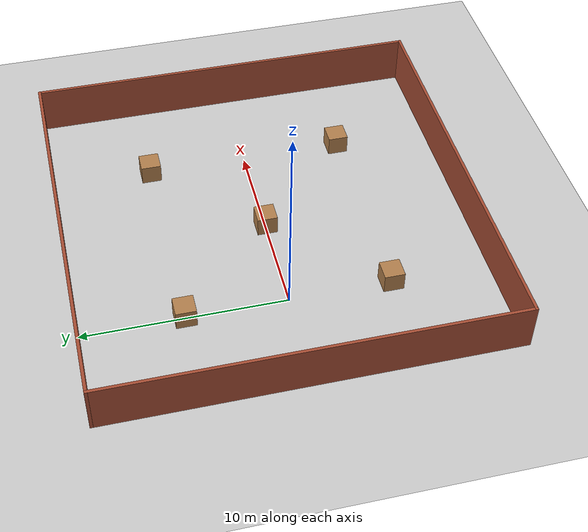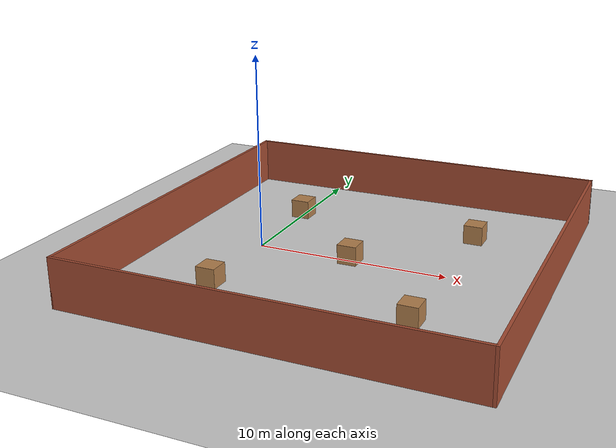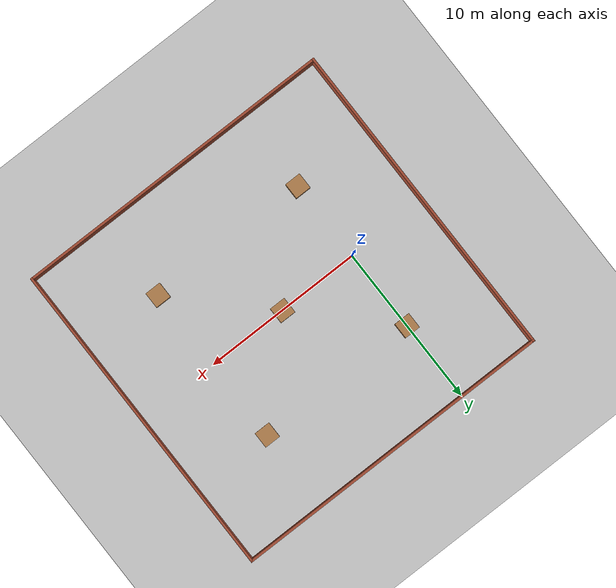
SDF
<?xml version="1.0"?>
<sdf version="1.6">
	<world name="office_world">
		<physics name="1ms" type="ignored">
			<max_step_size>0.001</max_step_size>
			<real_time_factor>1.0</real_time_factor>
		</physics>
		<plugin filename="ignition-gazebo-physics-system" name="gz::sim::systems::Physics"></plugin>
		<plugin filename="ignition-gazebo-user-commands-system" name="gz::sim::systems::UserCommands"></plugin>
		<plugin filename="ignition-gazebo-scene-broadcaster-system" name="gz::sim::systems::SceneBroadcaster"></plugin>
        <plugin filename="ignition-gazebo-contact-system" name="gz::sim::systems::Contact"></plugin>

		<model name="ground_plane">
			<static>true</static>
			<link name="link">
				<collision name="collision">
					<geometry>
						<plane>
						<normal>0 0 1</normal>
						<size>100 100</size>
						</plane>
					</geometry>
				</collision>
				<visual name="visual">
				<geometry>
					<plane>
						<normal>0 0 1</normal>
						<size>100 100</size>
					</plane>
				</geometry>
				<material>
					<ambient>0.8 0.8 0.8 1</ambient>
					<diffuse>0.8 0.8 0.8 1</diffuse>
					<specular>0.8 0.8 0.8 1</specular>
				</material>
				</visual>
			</link>
		</model>

		<light type="directional" name="sun">
			<cast_shadows>false</cast_shadows>
			<pose>0 0 10 0 0 0</pose>
			<diffuse>0.8 0.8 0.8 1</diffuse>
			<specular>0.2 0.2 0.2 1</specular>
			<attenuation>
				<range>1000</range>
				<constant>0.9</constant>
				<linear>0.01</linear>
				<quadratic>0.001</quadratic>
			</attenuation>
			<direction>-0.5 0.1 -0.9</direction>
		</light>

		<include>
			<uri>/Training_House</uri>
		</include>

		<include>
			<uri>/cube</uri>
		</include>

		<include>
			<uri>/cube2</uri>
		</include>

		<include>
			<uri>/cube3</uri>
		</include>

		<include>
			<uri>/cube4</uri>
		</include>

		<include>
			<uri>/cube5</uri>
		</include>

	</world>
</sdf>

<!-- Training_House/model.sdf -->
<sdf version='1.7'>
  <model name='Training_House'>
    <pose>5 0 0 0 -0 0</pose>
    <link name='Wall_12'>
      <collision name='Wall_12_Collision'>
        <geometry>
          <box>
            <size>20.15 0.15 2.5</size>
          </box>
        </geometry>
        <pose>0 0 1.25 0 -0 0</pose>
      </collision>
      <visual name='Wall_12_Visual'>
        <pose>0 0 1.25 0 -0 0</pose>
        <geometry>
          <box>
            <size>20.15 0.15 2.5</size>
          </box>
        </geometry>
        <material>
          <script>
            <uri>file://media/materials/scripts/gazebo.material</uri>
            <name>Gazebo/Bricks</name>
          </script>
          <ambient>0.996078 0.47451 0.0196078 1</ambient>
        </material>
        <meta>
          <layer>0</layer>
        </meta>
      </visual>
      <pose>-10 0 0 0 -0 -1.5708</pose>
    </link>
    <link name='Wall_13'>
      <collision name='Wall_13_Collision'>
        <geometry>
          <box>
            <size>20.15 0.15 2.5</size>
          </box>
        </geometry>
        <pose>0 0 1.25 0 -0 0</pose>
      </collision>
      <visual name='Wall_13_Visual'>
        <pose>0 0 1.25 0 -0 0</pose>
        <geometry>
          <box>
            <size>20.15 0.15 2.5</size>
          </box>
        </geometry>
        <material>
          <script>
            <uri>file://media/materials/scripts/gazebo.material</uri>
            <name>Gazebo/Bricks</name>
          </script>
          <ambient>0.996078 0.47451 0.0196078 1</ambient>
        </material>
        <meta>
          <layer>0</layer>
        </meta>
      </visual>
      <pose>0 -10 0 0 -0 0</pose>
    </link>
    <link name='Wall_14'>
      <collision name='Wall_14_Collision'>
        <geometry>
          <box>
            <size>20.15 0.15 2.5</size>
          </box>
        </geometry>
        <pose>0 0 1.25 0 -0 0</pose>
      </collision>
      <visual name='Wall_14_Visual'>
        <pose>0 0 1.25 0 -0 0</pose>
        <geometry>
          <box>
            <size>20.15 0.15 2.5</size>
          </box>
        </geometry>
        <material>
          <script>
            <uri>file://media/materials/scripts/gazebo.material</uri>
            <name>Gazebo/Bricks</name>
          </script>
          <ambient>0.996078 0.47451 0.0196078 1</ambient>
        </material>
        <meta>
          <layer>0</layer>
        </meta>
      </visual>
      <pose>10 0 0 0 -0 1.5708</pose>
    </link>
    <link name='Wall_15'>
      <collision name='Wall_15_Collision'>
        <geometry>
          <box>
            <size>20.15 0.15 2.5</size>
          </box>
        </geometry>
        <pose>0 0 1.25 0 -0 0</pose>
      </collision>
      <visual name='Wall_15_Visual'>
        <pose>0 0 1.25 0 -0 0</pose>
        <geometry>
          <box>
            <size>20.15 0.15 2.5</size>
          </box>
        </geometry>
        <material>
          <script>
            <uri>file://media/materials/scripts/gazebo.material</uri>
            <name>Gazebo/Bricks</name>
          </script>
          <ambient>0.996078 0.47451 0.0196078 1</ambient>
        </material>
        <meta>
          <layer>0</layer>
        </meta>
      </visual>
      <pose>0 10 0 0 -0 3.14159</pose>
    </link>
    <static>1</static>
  </model>
</sdf>

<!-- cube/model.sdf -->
<sdf version="1.5">
  <model name="wood_cube_5cm">
   <static>true</static>
    <link name="link">
      <pose>5 0 0.5 0 0 0</pose>
      <inertial>
        <mass>1</mass>
        <inertia>
          <ixx>2.3541666666666672e-05</ixx>
          <ixy>0</ixy>
          <ixz>0</ixz>
          <iyy>2.3541666666666672e-05</iyy>
          <iyz>0</iyz>
          <izz>2.3541666666666672e-05</izz>
        </inertia>
      </inertial>

      <collision name="collision">
        <geometry>
          <box>
            <size>1 1 1</size>
          </box>
        </geometry>
        <surface>
          <contact>
            <poissons_ratio>0.347</poissons_ratio>
            <elastic_modulus>8.8e+09</elastic_modulus>
            <ode>
              <kp>100000</kp>
              <kd>1</kd>
              <max_vel>1.0</max_vel>
              <min_depth>0.001</min_depth>
            </ode>
          </contact>
          <friction>
            <torsional>
              <coefficient>1.0</coefficient>
              <use_patch_radius>0</use_patch_radius>
              <surface_radius>0.05</surface_radius>
            </torsional>
          </friction>
        </surface>
      </collision>

      <visual name="visual">
        <geometry>
          <box>
            <size>1 1 1</size>
          </box>
        </geometry>
        <material>
          <script>
            <uri>file://media/materials/scripts/gazebo.material</uri>
            <name>Gazebo/Wood</name>
          </script>
        </material>
      </visual>

    </link>
  </model>
</sdf>

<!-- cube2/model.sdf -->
<sdf version="1.5">
  <model name="wood_cube_5cm_2">
   <static>true</static>
    <link name="link">
      <pose>0 5 0.5 0 0 0</pose>
      <inertial>
        <mass>1</mass>
        <inertia>
          <ixx>2.3541666666666672e-05</ixx>
          <ixy>0</ixy>
          <ixz>0</ixz>
          <iyy>2.3541666666666672e-05</iyy>
          <iyz>0</iyz>
          <izz>2.3541666666666672e-05</izz>
        </inertia>
      </inertial>

      <collision name="collision">
        <geometry>
          <box>
            <size>1 1 1</size>
          </box>
        </geometry>
        <surface>
          <contact>
            <!-- Red Pine coefficients for longitudinal axis of the wood
                 according to:
                 http://www.fpl.fs.fed.us/documnts/fplgtr/fplgtr113/ch04.pdf -->
            <poissons_ratio>0.347</poissons_ratio>
            <elastic_modulus>8.8e+09</elastic_modulus>
            <ode>
              <kp>100000</kp>
              <kd>1</kd>
              <max_vel>1.0</max_vel>
              <min_depth>0.001</min_depth>
            </ode>
          </contact>
          <friction>
            <torsional>
              <coefficient>1.0</coefficient>
              <use_patch_radius>0</use_patch_radius>
              <surface_radius>0.05</surface_radius>
            </torsional>
          </friction>
        </surface>
      </collision>

      <visual name="visual">
        <geometry>
          <box>
            <size>1 1 1</size>
          </box>
        </geometry>
        <material>
          <script>
            <uri>file://media/materials/scripts/gazebo.material</uri>
            <name>Gazebo/Wood</name>
          </script>
        </material>
      </visual>

    </link>
  </model>
</sdf>

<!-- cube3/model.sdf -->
<sdf version="1.5">
  <model name="wood_cube_5cm_3">
   <static>true</static>
    <link name="link">
      <pose>0 -5 0.5 0 0 0</pose>
     <inertial>
        <mass>1</mass>
        <inertia>
          <ixx>2.3541666666666672e-05</ixx>
          <ixy>0</ixy>
          <ixz>0</ixz>
          <iyy>2.3541666666666672e-05</iyy>
          <iyz>0</iyz>
          <izz>2.3541666666666672e-05</izz>
        </inertia>
      </inertial>

      <collision name="collision">
        <geometry>
          <box>
            <size>1 1 1</size>
          </box>
        </geometry>
        <surface>
          <contact>
            <!-- Red Pine coefficients for longitudinal axis of the wood
                 according to:
                 http://www.fpl.fs.fed.us/documnts/fplgtr/fplgtr113/ch04.pdf -->
            <poissons_ratio>0.347</poissons_ratio>
            <elastic_modulus>8.8e+09</elastic_modulus>
            <ode>
              <kp>100000</kp>
              <kd>1</kd>
              <max_vel>1.0</max_vel>
              <min_depth>0.001</min_depth>
            </ode>
          </contact>
          <friction>
            <torsional>
              <coefficient>1.0</coefficient>
              <use_patch_radius>0</use_patch_radius>
              <surface_radius>0.05</surface_radius>
            </torsional>
          </friction>
        </surface>
      </collision>

      <visual name="visual">
        <geometry>
          <box>
            <size>1 1 1</size>
          </box>
        </geometry>
        <material>
          <script>
            <uri>file://media/materials/scripts/gazebo.material</uri>
            <name>Gazebo/Wood</name>
          </script>
        </material>
      </visual>

    </link>
  </model>
</sdf>

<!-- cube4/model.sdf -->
<sdf version="1.5">
  <model name="wood_cube_5cm_4">
   <static>true</static>
    <link name="link">
      <pose>10 -5 0.5 0 0 0</pose>
       <inertial>
        <mass>1</mass>
        <inertia>
          <ixx>2.3541666666666672e-05</ixx>
          <ixy>0</ixy>
          <ixz>0</ixz>
          <iyy>2.3541666666666672e-05</iyy>
          <iyz>0</iyz>
          <izz>2.3541666666666672e-05</izz>
        </inertia>
      </inertial>

      <collision name="collision">
        <geometry>
          <box>
            <size>1 1 1</size>
          </box>
        </geometry>
        <surface>
          <contact>
            <!-- Red Pine coefficients for longitudinal axis of the wood
                 according to:
                 http://www.fpl.fs.fed.us/documnts/fplgtr/fplgtr113/ch04.pdf -->
            <poissons_ratio>0.347</poissons_ratio>
            <elastic_modulus>8.8e+09</elastic_modulus>
            <ode>
              <kp>100000</kp>
              <kd>1</kd>
              <max_vel>1.0</max_vel>
              <min_depth>0.001</min_depth>
            </ode>
          </contact>
          <friction>
            <torsional>
              <coefficient>1.0</coefficient>
              <use_patch_radius>0</use_patch_radius>
              <surface_radius>0.05</surface_radius>
            </torsional>
          </friction>
        </surface>
      </collision>

      <visual name="visual">
        <geometry>
          <box>
            <size>1 1 1</size>
          </box>
        </geometry>
        <material>
          <script>
            <uri>file://media/materials/scripts/gazebo.material</uri>
            <name>Gazebo/Wood</name>
          </script>
        </material>
      </visual>

    </link>
  </model>
</sdf>

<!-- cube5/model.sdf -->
<sdf version="1.5">
  <model name="wood_cube_5cm_5">
   <static>true</static>
    <link name="link">
      <pose>10 5 0.5 0 0 0</pose>
     <inertial>
        <mass>1</mass>
        <inertia>
          <ixx>2.3541666666666672e-05</ixx>
          <ixy>0</ixy>
          <ixz>0</ixz>
          <iyy>2.3541666666666672e-05</iyy>
          <iyz>0</iyz>
          <izz>2.3541666666666672e-05</izz>
        </inertia>
      </inertial>

      <collision name="collision">
        <geometry>
          <box>
            <size>1 1 1</size>
          </box>
        </geometry>
        <surface>
          <contact>
            <!-- Red Pine coefficients for longitudinal axis of the wood
                 according to:
                 http://www.fpl.fs.fed.us/documnts/fplgtr/fplgtr113/ch04.pdf -->
            <poissons_ratio>0.347</poissons_ratio>
            <elastic_modulus>8.8e+09</elastic_modulus>
            <ode>
              <kp>100000</kp>
              <kd>1</kd>
              <max_vel>1.0</max_vel>
              <min_depth>0.001</min_depth>
            </ode>
          </contact>
          <friction>
            <torsional>
              <coefficient>1.0</coefficient>
              <use_patch_radius>0</use_patch_radius>
              <surface_radius>0.05</surface_radius>
            </torsional>
          </friction>
        </surface>
      </collision>

      <visual name="visual">
        <geometry>
          <box>
            <size>1 1 1</size>
          </box>
        </geometry>
        <material>
          <script>
            <uri>file://media/materials/scripts/gazebo.material</uri>
            <name>Gazebo/Wood</name>
          </script>
        </material>
      </visual>

    </link>
  </model>
</sdf>
